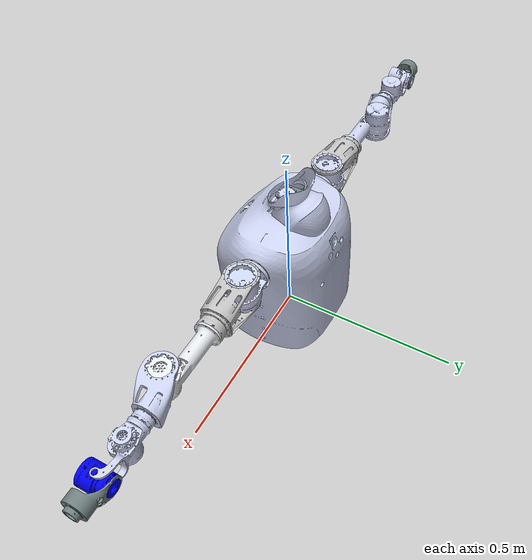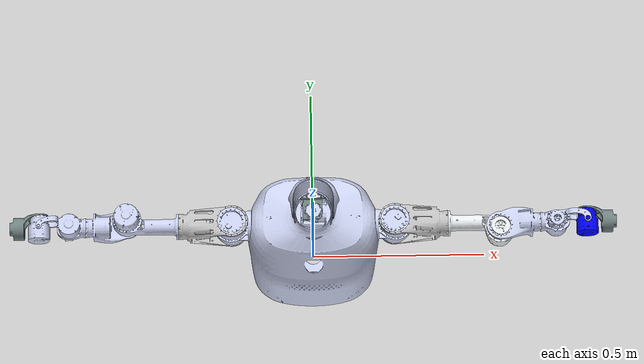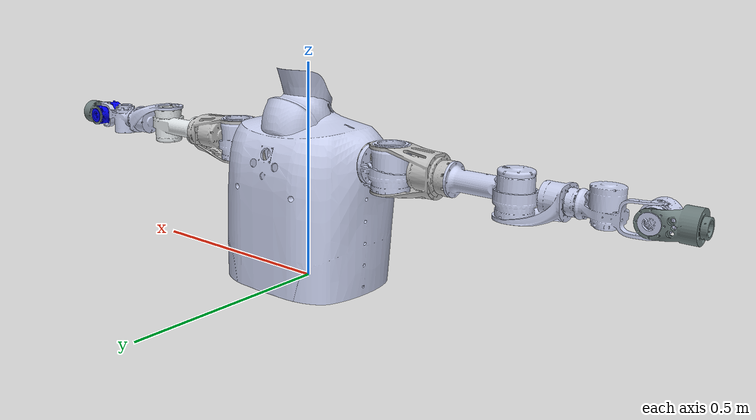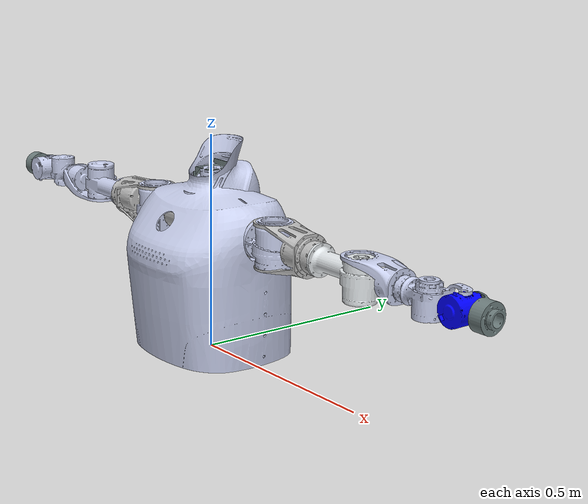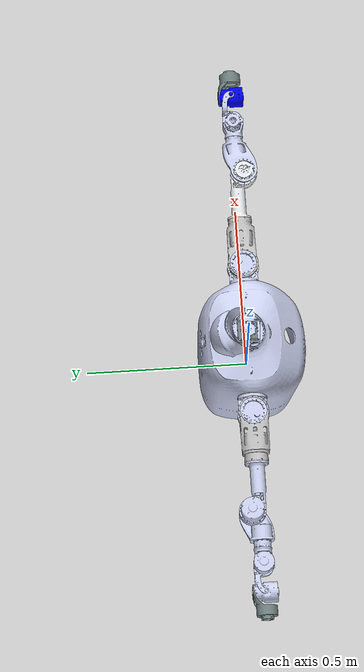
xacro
<?xml version="1.0"?>
<robot xmlns:xacro="http://www.ros.org/wiki/xacro" name="double_arm">
    <xacro:arg name="initial_positions_file" default="initial_positions.yaml" />

    <!-- Import double_arm urdf file -->
    <xacro:include filename="$(find duco_support)/urdf/double_arm.urdf" />

    <!-- Import control_xacro -->
    <xacro:include filename="double_arm.ros2_control.xacro" />

    <xacro:double_arm_ros2_control name="FakeSystem" initial_positions_file="$(arg initial_positions_file)"/>

</robot>

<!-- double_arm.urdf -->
<robot
  name="double_arm">
  <link
    name="base_link">
    <inertial>
      <origin
        xyz="0.0378202497379902 0.00248487961164133 0.235824771434935"
        rpy="0 0 0" />
      <mass
        value="3.26814602021379" />
      <inertia
        ixx="0.0686802700834278"
        ixy="-0.00558757381311196"
        ixz="-0.0124399744728354"
        iyy="0.0942047033211713"
        iyz="-0.00213877089871519"
        izz="0.0683886371186053" />
    </inertial>
    <visual>
      <origin
        xyz="0 0 0"
        rpy="0 0 0" />
      <geometry>
        <mesh
          filename="package://duco_support/meshes/double_arm/base_link.STL" />
      </geometry>
      <material
        name="">
        <color
          rgba="0.792156862745098 0.819607843137255 0.933333333333333 1" />
      </material>
    </visual>
    <collision>
      <origin
        xyz="0 0 0"
        rpy="0 0 0" />
      <geometry>
        <mesh
          filename="package://duco_support/meshes/double_arm/base_link.STL" />
      </geometry>
    </collision>
  </link>
  <link
    name="neck_pitch_link">
    <inertial>
      <origin
        xyz="0.0264425376360982 0.00808473670875362 -0.0133575957764713"
        rpy="0 0 0" />
      <mass
        value="0.0101228976110487" />
      <inertia
        ixx="8.3750097041473E-06"
        ixy="-1.22602867323743E-06"
        ixz="1.81377027364789E-06"
        iyy="7.20989607162345E-06"
        iyz="1.16034623116595E-06"
        izz="8.25180050049213E-06" />
    </inertial>
    <visual>
      <origin
        xyz="0 0 0"
        rpy="0 0 0" />
      <geometry>
        <mesh
          filename="package://duco_support/meshes/double_arm/neck_pitch_link.STL" />
      </geometry>
      <material
        name="">
        <color
          rgba="0.43921568627451 0.501960784313725 0.501960784313725 1" />
      </material>
    </visual>
    <collision>
      <origin
        xyz="0 0 0"
        rpy="0 0 0" />
      <geometry>
        <mesh
          filename="package://duco_support/meshes/double_arm/neck_pitch_link.STL" />
      </geometry>
    </collision>
  </link>
  <joint
    name="neck_pitch"
    type="fixed">
    <origin
      xyz="-0.0285 0.0005 0.387"
      rpy="-1.5708 -1.5667 1.5708" />
    <parent
      link="base_link" />
    <child
      link="neck_pitch_link" />
    <axis
      xyz="0 0 0" />
    <limit
      lower="-3.1416"
      upper="3.1416"
      effort="300"
      velocity="1.7453" />
  </joint>
  <link
    name="neck_roll_link">
    <inertial>
      <origin
        xyz="-0.000868414696194691 0.0181941945111824 0.0876709502607623"
        rpy="0 0 0" />
      <mass
        value="0.481789297187813" />
      <inertia
        ixx="0.00266074015425306"
        ixy="1.93357724778041E-05"
        ixz="-2.42550182009217E-05"
        iyy="0.00230034101054033"
        iyz="0.000440239747889259"
        izz="0.00216216997271251" />
    </inertial>
    <visual>
      <origin
        xyz="0 0 0"
        rpy="0 0 0" />
      <geometry>
        <mesh
          filename="package://duco_support/meshes/double_arm/neck_roll_link.STL" />
      </geometry>
      <material
        name="">
        <color
          rgba="0.792156862745098 0.819607843137255 0.933333333333333 1" />
      </material>
    </visual>
    <collision>
      <origin
        xyz="0 0 0"
        rpy="0 0 0" />
      <geometry>
        <mesh
          filename="package://duco_support/meshes/double_arm/neck_roll_link.STL" />
      </geometry>
    </collision>
  </link>
  <joint
    name="neck_roll"
    type="fixed">
    <origin
      xyz="0.038 0 -0.0285"
      rpy="0 -1.5708 0" />
    <parent
      link="neck_pitch_link" />
    <child
      link="neck_roll_link" />
    <axis
      xyz="0 0 0" />
    <limit
      lower="-3.1416"
      upper="3.1416"
      effort="300"
      velocity="1.7453" />
  </joint>
  <link
    name="left_arm_link0">
    <inertial>
      <origin
        xyz="-4.49663221894266E-05 -2.05935876568253E-06 -0.00772651169223726"
        rpy="0 0 0" />
      <mass
        value="0.429473358917669" />
      <inertia
        ixx="0.00044615691860442"
        ixy="-8.50043240122652E-08"
        ixz="-8.51232041761971E-07"
        iyy="0.000445537823103336"
        iyz="-8.58078002632038E-08"
        izz="0.000368840259750462" />
    </inertial>
    <visual>
      <origin
        xyz="0 0 0"
        rpy="0 0 0" />
      <geometry>
        <mesh
          filename="package://duco_support/meshes/double_arm/left_arm_link0.STL" />
      </geometry>
      <material
        name="">
        <color
          rgba="0.752941176470588 0.752941176470588 0.752941176470588 1" />
      </material>
    </visual>
    <collision>
      <origin
        xyz="0 0 0"
        rpy="0 0 0" />
      <geometry>
        <mesh
          filename="package://duco_support/meshes/double_arm/left_arm_link0.STL" />
      </geometry>
    </collision>
  </link>
  <joint
    name="left_arm_J0"
    type="fixed">
    <origin
      xyz="0.143 0 0.296"
      rpy="1.5708 0 1.5708" />
    <parent
      link="base_link" />
    <child
      link="left_arm_link0" />
    <axis
      xyz="0 0 0" />
  </joint>
  <link
    name="left_arm_link1">
    <inertial>
      <origin
        xyz="4.83035276329282E-05 -0.00461629016521919 -0.00387592390917818"
        rpy="0 0 0" />
      <mass
        value="1.37762980165397" />
      <inertia
        ixx="0.0016977188431714"
        ixy="-4.94570057467487E-06"
        ixz="-4.4748448560165E-06"
        iyy="0.0014896344288354"
        iyz="3.82862045959219E-05"
        izz="0.00156016994943049" />
    </inertial>
    <visual>
      <origin
        xyz="0 0 0"
        rpy="0 0 0" />
      <geometry>
        <mesh
          filename="package://duco_support/meshes/double_arm/left_arm_link1.STL" />
      </geometry>
      <material
        name="">
        <color
          rgba="0.796078431372549 0.823529411764706 0.937254901960784 1" />
      </material>
    </visual>
    <collision>
      <origin
        xyz="0 0 0"
        rpy="0 0 0" />
      <geometry>
        <mesh
          filename="package://duco_support/meshes/double_arm/left_arm_link1.STL" />
      </geometry>
    </collision>
  </link>
  <joint
    name="left_arm_J1"
    type="revolute">
    <origin
      xyz="0 0 0.0897"
      rpy="0 0 0" />
    <parent
      link="left_arm_link0" />
    <child
      link="left_arm_link1" />
    <axis
      xyz="0 0 1" />
    <limit
      lower="-3.1416"
      upper="3.1416"
      effort="300"
      velocity="1.7453" />
  </joint>
  <link
    name="left_arm_link2">
    <inertial>
      <origin
        xyz="-6.13611997681042E-05 0.100524325700007 -0.000555195552561782"
        rpy="0 0 0" />
      <mass
        value="1.1075956211445" />
      <inertia
        ixx="0.00206987964853319"
        ixy="-2.5727561704548E-06"
        ixz="4.05578647073776E-07"
        iyy="0.00119017895465369"
        iyz="-2.49279411483697E-05"
        izz="0.00181064971147027" />
    </inertial>
    <visual>
      <origin
        xyz="0 0 0"
        rpy="0 0 0" />
      <geometry>
        <mesh
          filename="package://duco_support/meshes/double_arm/left_arm_link2.STL" />
      </geometry>
      <material
        name="">
        <color
          rgba="0.752941176470588 0.752941176470588 0.752941176470588 1" />
      </material>
    </visual>
    <collision>
      <origin
        xyz="0 0 0"
        rpy="0 0 0" />
      <geometry>
        <mesh
          filename="package://duco_support/meshes/double_arm/left_arm_link2.STL" />
      </geometry>
    </collision>
  </link>
  <joint
    name="left_arm_J2"
    type="revolute">
    <origin
      xyz="0 0 0"
      rpy="1.5708 0 0" />
    <parent
      link="left_arm_link1" />
    <child
      link="left_arm_link2" />
    <axis
      xyz="0 0 1" />
    <limit
      lower="-3.1416"
      upper="3.1416"
      effort="300"
      velocity="1.7453" />
  </joint>
  <link
    name="left_arm_link3">
    <inertial>
      <origin
        xyz="-0.018911633993998 0.000296691098943369 -0.0142245486290822"
        rpy="0 0 0" />
      <mass
        value="1.07898685239744" />
      <inertia
        ixx="0.0023591957930661"
        ixy="9.6736809145384E-07"
        ixz="0.000297260924663732"
        iyy="0.00227242621553985"
        iyz="-4.83798233930201E-06"
        izz="0.000974554276687362" />
    </inertial>
    <visual>
      <origin
        xyz="0 0 0"
        rpy="0 0 0" />
      <geometry>
        <mesh
          filename="package://duco_support/meshes/double_arm/left_arm_link3.STL" />
      </geometry>
      <material
        name="">
        <color
          rgba="0.898039215686275 0.917647058823529 0.929411764705882 1" />
      </material>
    </visual>
    <collision>
      <origin
        xyz="0 0 0"
        rpy="0 0 0" />
      <geometry>
        <mesh
          filename="package://duco_support/meshes/double_arm/left_arm_link3.STL" />
      </geometry>
    </collision>
  </link>
  <joint
    name="left_arm_J3"
    type="revolute">
    <origin
      xyz="0 0.3005 0"
      rpy="-1.5708 0 0" />
    <parent
      link="left_arm_link2" />
    <child
      link="left_arm_link3" />
    <axis
      xyz="0 0 -1" />
    <limit
      lower="-3.1416"
      upper="3.1416"
      effort="300"
      velocity="1.7453" />
  </joint>
  <link
    name="left_arm_link4">
    <inertial>
      <origin
        xyz="0.0208389992277257 0.0730742315283586 -0.00789651788386114"
        rpy="0 0 0" />
      <mass
        value="0.229809055360262" />
      <inertia
        ixx="0.000279518891441388"
        ixy="-2.33266154163524E-05"
        ixz="-1.71930869358015E-05"
        iyy="0.000193356671709157"
        iyz="-7.04131247181475E-05"
        izz="0.000276692641160306" />
    </inertial>
    <visual>
      <origin
        xyz="0 0 0"
        rpy="0 0 0" />
      <geometry>
        <mesh
          filename="package://duco_support/meshes/double_arm/left_arm_link4.STL" />
      </geometry>
      <material
        name="">
        <color
          rgba="0.792156862745098 0.819607843137255 0.933333333333333 1" />
      </material>
    </visual>
    <collision>
      <origin
        xyz="0 0 0"
        rpy="0 0 0" />
      <geometry>
        <mesh
          filename="package://duco_support/meshes/double_arm/left_arm_link4.STL" />
      </geometry>
    </collision>
  </link>
  <joint
    name="left_arm_J4"
    type="revolute">
    <origin
      xyz="-0.0225 0 0"
      rpy="1.5708 0 0" />
    <parent
      link="left_arm_link3" />
    <child
      link="left_arm_link4" />
    <axis
      xyz="0 0 1" />
    <limit
      lower="-3.1416"
      upper="3.1416"
      effort="300"
      velocity="1.7453" />
  </joint>
  <link
    name="left_arm_link5">
    <inertial>
      <origin
        xyz="0.00148159672131504 -0.00328676794112681 -0.0850235099273732"
        rpy="0 0 0" />
      <mass
        value="0.2095145401104" />
      <inertia
        ixx="0.000194078608252324"
        ixy="-2.46700631773096E-06"
        ixz="-1.38013294410615E-05"
        iyy="0.000169842954409334"
        iyz="-1.05018782644311E-05"
        izz="0.000129153246030747" />
    </inertial>
    <visual>
      <origin
        xyz="0 0 0"
        rpy="0 0 0" />
      <geometry>
        <mesh
          filename="package://duco_support/meshes/double_arm/left_arm_link5.STL" />
      </geometry>
      <material
        name="">
        <color
          rgba="0.792156862745098 0.819607843137255 0.933333333333333 1" />
      </material>
    </visual>
    <collision>
      <origin
        xyz="0 0 0"
        rpy="0 0 0" />
      <geometry>
        <mesh
          filename="package://duco_support/meshes/double_arm/left_arm_link5.STL" />
      </geometry>
    </collision>
  </link>
  <joint
    name="left_arm_J5"
    type="revolute">
    <origin
      xyz="0.0225 0.25 0"
      rpy="-1.5708 0 0" />
    <parent
      link="left_arm_link4" />
    <child
      link="left_arm_link5" />
    <axis
      xyz="0 0 1" />
    <limit
      lower="-3.1416"
      upper="3.1416"
      effort="300"
      velocity="1.7453" />
  </joint>
  <link
    name="left_arm_link6">
    <inertial>
      <origin
        xyz="-3.17973833828811E-05 -0.000510250008096734 -7.98321817644387E-05"
        rpy="0 0 0" />
      <mass
        value="0.157452997694605" />
      <inertia
        ixx="8.76692567231686E-05"
        ixy="1.3184727951352E-07"
        ixz="-2.42911944943532E-08"
        iyy="6.53234875819123E-05"
        iyz="1.38683624781029E-07"
        izz="9.09421100990473E-05" />
    </inertial>
    <visual>
      <origin
        xyz="0 0 0"
        rpy="0 0 0" />
      <geometry>
        <mesh
          filename="package://duco_support/meshes/double_arm/left_arm_link6.STL" />
      </geometry>
      <material
        name="">
        <color
          rgba="0 0 1 1" />
      </material>
    </visual>
    <collision>
      <origin
        xyz="0 0 0"
        rpy="0 0 0" />
      <geometry>
        <mesh
          filename="package://duco_support/meshes/double_arm/left_arm_link6.STL" />
      </geometry>
    </collision>
  </link>
  <joint
    name="left_arm_J6"
    type="revolute">
    <origin
      xyz="0 0 0"
      rpy="1.5708 -1.5708 0" />
    <parent
      link="left_arm_link5" />
    <child
      link="left_arm_link6" />
    <axis
      xyz="0 0 -1" />
    <limit
      lower="-3.1416"
      upper="3.1416"
      effort="300"
      velocity="1.7453" />
  </joint>
  <link
    name="left_arm_link7">
    <inertial>
      <origin
        xyz="0.0525955873709749 9.54054269169946E-05 0.00541833613104666"
        rpy="0 0 0" />
      <mass
        value="0.157621885180453" />
      <inertia
        ixx="0.000111322740938638"
        ixy="4.41001105077036E-09"
        ixz="1.37632433124292E-05"
        iyy="8.23830403703832E-05"
        iyz="-2.16413703694605E-07"
        izz="7.62644977217794E-05" />
    </inertial>
    <visual>
      <origin
        xyz="0 0 0"
        rpy="0 0 0" />
      <geometry>
        <mesh
          filename="package://duco_support/meshes/double_arm/left_arm_link7.STL" />
      </geometry>
      <material
        name="">
        <color
          rgba="0.43921568627451 0.501960784313725 0.501960784313725 1" />
      </material>
    </visual>
    <collision>
      <origin
        xyz="0 0 0"
        rpy="0 0 0" />
      <geometry>
        <mesh
          filename="package://duco_support/meshes/double_arm/left_arm_link7.STL" />
      </geometry>
    </collision>
  </link>
  <joint
    name="left_arm_J7"
    type="revolute">
    <origin
      xyz="0 0 0"
      rpy="1.5708 0 0" />
    <parent
      link="left_arm_link6" />
    <child
      link="left_arm_link7" />
    <axis
      xyz="0 0 -1" />
    <limit
      lower="-3.1416"
      upper="3.1416"
      effort="300"
      velocity="1.7453" />
  </joint>
  <link
    name="right_arm_link0">
    <inertial>
      <origin
        xyz="-4.49644073452025E-05 -2.05780637008157E-06 -0.00772650845468376"
        rpy="0 0 0" />
      <mass
        value="0.429473325876526" />
      <inertia
        ixx="0.000446156842871368"
        ixy="-8.49869634007724E-08"
        ixz="-8.51194933230475E-07"
        iyy="0.000445537740229448"
        iyz="-8.57776886586398E-08"
        izz="0.000368840224895942" />
    </inertial>
    <visual>
      <origin
        xyz="0 0 0"
        rpy="0 0 0" />
      <geometry>
        <mesh
          filename="package://duco_support/meshes/double_arm/right_arm_link0.STL" />
      </geometry>
      <material
        name="">
        <color
          rgba="0.752941176470588 0.752941176470588 0.752941176470588 1" />
      </material>
    </visual>
    <collision>
      <origin
        xyz="0 0 0"
        rpy="0 0 0" />
      <geometry>
        <mesh
          filename="package://duco_support/meshes/double_arm/right_arm_link0.STL" />
      </geometry>
    </collision>
  </link>
  <joint
    name="right_arm_J0"
    type="fixed">
    <origin
      xyz="-0.143 0 0.296"
      rpy="1.5708 0 -1.5708" />
    <parent
      link="base_link" />
    <child
      link="right_arm_link0" />
    <axis
      xyz="0 0 0" />
  </joint>
  <link
    name="right_arm_link1">
    <inertial>
      <origin
        xyz="4.83035276329768E-05 -0.00461629016521914 -0.00387592390917813"
        rpy="0 0 0" />
      <mass
        value="0.510233259871843" />
      <inertia
        ixx="0.000628784756730148"
        ixy="-1.83174095358344E-06"
        ixz="-1.65734994667268E-06"
        iyy="0.000551716455124223"
        iyz="1.41800757762675E-05"
        izz="0.000577840722011292" />
    </inertial>
    <visual>
      <origin
        xyz="0 0 0"
        rpy="0 0 0" />
      <geometry>
        <mesh
          filename="package://duco_support/meshes/double_arm/right_arm_link1.STL" />
      </geometry>
      <material
        name="">
        <color
          rgba="0.792156862745098 0.819607843137255 0.933333333333333 1" />
      </material>
    </visual>
    <collision>
      <origin
        xyz="0 0 0"
        rpy="0 0 0" />
      <geometry>
        <mesh
          filename="package://duco_support/meshes/double_arm/right_arm_link1.STL" />
      </geometry>
    </collision>
  </link>
  <joint
    name="right_arm_J1"
    type="revolute">
    <origin
      xyz="0 0 0.0897"
      rpy="0 0 0" />
    <parent
      link="right_arm_link0" />
    <child
      link="right_arm_link1" />
    <axis
      xyz="0 0 -1" />
    <limit
      lower="-3.1416"
      upper="3.1416"
      effort="300"
      velocity="1.7453" />
  </joint>
  <link
    name="right_arm_link2">
    <inertial>
      <origin
        xyz="-6.13611222286328E-05 0.100524325686774 -0.000555195530869801"
        rpy="0 0 0" />
      <mass
        value="1.10759562151248" />
      <inertia
        ixx="0.00206987964892811"
        ixy="-2.57275650029226E-06"
        ixz="4.05578643405701E-07"
        iyy="0.00119017895541491"
        iyz="-2.49279411434746E-05"
        izz="0.00181064971074143" />
    </inertial>
    <visual>
      <origin
        xyz="0 0 0"
        rpy="0 0 0" />
      <geometry>
        <mesh
          filename="package://duco_support/meshes/double_arm/right_arm_link2.STL" />
      </geometry>
      <material
        name="">
        <color
          rgba="0.752941176470588 0.752941176470588 0.752941176470588 1" />
      </material>
    </visual>
    <collision>
      <origin
        xyz="0 0 0"
        rpy="0 0 0" />
      <geometry>
        <mesh
          filename="package://duco_support/meshes/double_arm/right_arm_link2.STL" />
      </geometry>
    </collision>
  </link>
  <joint
    name="right_arm_J2"
    type="revolute">
    <origin
      xyz="0 0 0"
      rpy="1.5708 0 0" />
    <parent
      link="right_arm_link1" />
    <child
      link="right_arm_link2" />
    <axis
      xyz="0 0 1" />
    <limit
      lower="-3.1416"
      upper="3.1416"
      effort="300"
      velocity="1.7453" />
  </joint>
  <link
    name="right_arm_link3">
    <inertial>
      <origin
        xyz="-0.0188034164202653 -0.00113806163829183 -0.0144875281301353"
        rpy="0 0 0" />
      <mass
        value="0.390738219005927" />
      <inertia
        ixx="0.000835408137245896"
        ixy="-3.2651861787711E-06"
        ixz="0.00010908994856849"
        iyy="0.000833488874128403"
        iyz="1.29633969952862E-05"
        izz="0.000325975358183885" />
    </inertial>
    <visual>
      <origin
        xyz="0 0 0"
        rpy="0 0 0" />
      <geometry>
        <mesh
          filename="package://duco_support/meshes/double_arm/right_arm_link3.STL" />
      </geometry>
      <material
        name="">
        <color
          rgba="0.792156862745098 0.819607843137255 0.933333333333333 1" />
      </material>
    </visual>
    <collision>
      <origin
        xyz="0 0 0"
        rpy="0 0 0" />
      <geometry>
        <mesh
          filename="package://duco_support/meshes/double_arm/right_arm_link3.STL" />
      </geometry>
    </collision>
  </link>
  <joint
    name="right_arm_J3"
    type="revolute">
    <origin
      xyz="0 0.3005 0"
      rpy="-1.5708 0 0" />
    <parent
      link="right_arm_link2" />
    <child
      link="right_arm_link3" />
    <axis
      xyz="0 0 -1" />
    <limit
      lower="-3.1416"
      upper="3.1416"
      effort="300"
      velocity="1.7453" />
  </joint>
  <link
    name="right_arm_link4">
    <inertial>
      <origin
        xyz="0.0207462175228632 0.0730757838138242 0.00789254529456673"
        rpy="0 0 0" />
      <mass
        value="0.229813521726857" />
      <inertia
        ixx="0.000279491178108515"
        ixy="-2.37794886938613E-05"
        ixz="1.71400031327494E-05"
        iyy="0.000193281905668606"
        iyz="7.04035924752123E-05"
        izz="0.000276590330064731" />
    </inertial>
    <visual>
      <origin
        xyz="0 0 0"
        rpy="0 0 0" />
      <geometry>
        <mesh
          filename="package://duco_support/meshes/double_arm/right_arm_link4.STL" />
      </geometry>
      <material
        name="">
        <color
          rgba="0.792156862745098 0.819607843137255 0.933333333333333 1" />
      </material>
    </visual>
    <collision>
      <origin
        xyz="0 0 0"
        rpy="0 0 0" />
      <geometry>
        <mesh
          filename="package://duco_support/meshes/double_arm/right_arm_link4.STL" />
      </geometry>
    </collision>
  </link>
  <joint
    name="right_arm_J4"
    type="revolute">
    <origin
      xyz="-0.0225 0 0"
      rpy="1.5708 0 0" />
    <parent
      link="right_arm_link3" />
    <child
      link="right_arm_link4" />
    <axis
      xyz="0 0 -1" />
    <limit
      lower="-3.1416"
      upper="3.1416"
      effort="300"
      velocity="1.7453" />
  </joint>
  <link
    name="right_arm_link5">
    <inertial>
      <origin
        xyz="-0.00144109942633979 0.00338133753341241 -0.0852537713058311"
        rpy="0 0 0" />
      <mass
        value="0.208873354359598" />
      <inertia
        ixx="0.000189692532027574"
        ixy="-2.18667657578522E-06"
        ixz="1.31418056416785E-05"
        iyy="0.000165881638570448"
        iyz="8.98869330968672E-06"
        izz="0.000128339886366414" />
    </inertial>
    <visual>
      <origin
        xyz="0 0 0"
        rpy="0 0 0" />
      <geometry>
        <mesh
          filename="package://duco_support/meshes/double_arm/right_arm_link5.STL" />
      </geometry>
      <material
        name="">
        <color
          rgba="0.792156862745098 0.819607843137255 0.933333333333333 1" />
      </material>
    </visual>
    <collision>
      <origin
        xyz="0 0 0"
        rpy="0 0 0" />
      <geometry>
        <mesh
          filename="package://duco_support/meshes/double_arm/right_arm_link5.STL" />
      </geometry>
    </collision>
  </link>
  <joint
    name="right_arm_J5"
    type="revolute">
    <origin
      xyz="0.0225 0.25 0"
      rpy="-1.5708 0 0" />
    <parent
      link="right_arm_link4" />
    <child
      link="right_arm_link5" />
    <axis
      xyz="0 0 -1" />
    <limit
      lower="-3.1416"
      upper="3.1416"
      effort="300"
      velocity="1.7453" />
  </joint>
  <link
    name="right_arm_link6">
    <inertial>
      <origin
        xyz="-3.17973742574029E-05 0.000510249988058209 0.00107983216296176"
        rpy="0 0 0" />
      <mass
        value="0.157452997493096" />
      <inertia
        ixx="8.76692566244096E-05"
        ixy="-1.31847303472727E-07"
        ixz="2.42911717377624E-08"
        iyy="6.5323487525043E-05"
        iyz="1.38683674159897E-07"
        izz="9.09421100358791E-05" />
    </inertial>
    <visual>
      <origin
        xyz="0 0 0"
        rpy="0 0 0" />
      <geometry>
        <mesh
          filename="package://duco_support/meshes/double_arm/right_arm_link6.STL" />
      </geometry>
      <material
        name="">
        <color
          rgba="0.792156862745098 0.819607843137255 0.933333333333333 1" />
      </material>
    </visual>
    <collision>
      <origin
        xyz="0 0 0"
        rpy="0 0 0" />
      <geometry>
        <mesh
          filename="package://duco_support/meshes/double_arm/right_arm_link6.STL" />
      </geometry>
    </collision>
  </link>
  <joint
    name="right_arm_J6"
    type="revolute">
    <origin
      xyz="0 0 0"
      rpy="1.5708 -1.5708 0" />
    <parent
      link="right_arm_link5" />
    <child
      link="right_arm_link6" />
    <axis
      xyz="0 0 1" />
    <limit
      lower="-3.1416"
      upper="3.1416"
      effort="300"
      velocity="1.7453" />
  </joint>
  <link
    name="right_arm_link7">
    <inertial>
      <origin
        xyz="0.0525955966355082 0.000904600106993225 -0.0054183235413045"
        rpy="0 0 0" />
      <mass
        value="0.157621813942239" />
      <inertia
        ixx="0.000111322727384927"
        ixy="-4.40694645075752E-09"
        ixz="-1.37632376674442E-05"
        iyy="8.2383001794795E-05"
        iyz="-2.16395257823518E-07"
        izz="7.62645161164362E-05" />
    </inertial>
    <visual>
      <origin
        xyz="0 0 0"
        rpy="0 0 0" />
      <geometry>
        <mesh
          filename="package://duco_support/meshes/double_arm/right_arm_link7.STL" />
      </geometry>
      <material
        name="">
        <color
          rgba="0.43921568627451 0.501960784313725 0.501960784313725 1" />
      </material>
    </visual>
    <collision>
      <origin
        xyz="0 0 0"
        rpy="0 0 0" />
      <geometry>
        <mesh
          filename="package://duco_support/meshes/double_arm/right_arm_link7.STL" />
      </geometry>
    </collision>
  </link>
  <joint
    name="right_arm_J7"
    type="revolute">
    <origin
      xyz="0 0 0"
      rpy="1.5708 0 0" />
    <parent
      link="right_arm_link6" />
    <child
      link="right_arm_link7" />
    <axis
      xyz="0 0 -1" />
    <limit
      lower="-3.1416"
      upper="3.1416"
      effort="300"
      velocity="1.7453" />
  </joint>
</robot>
